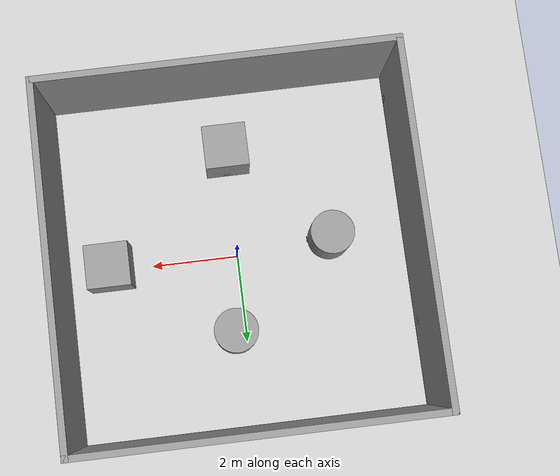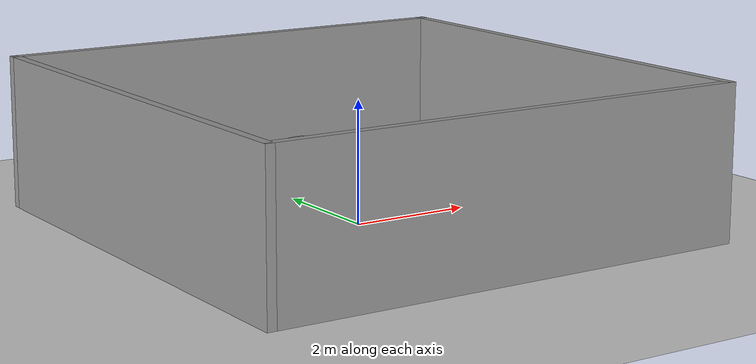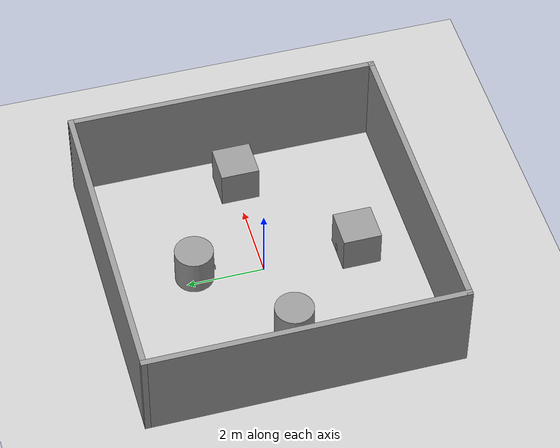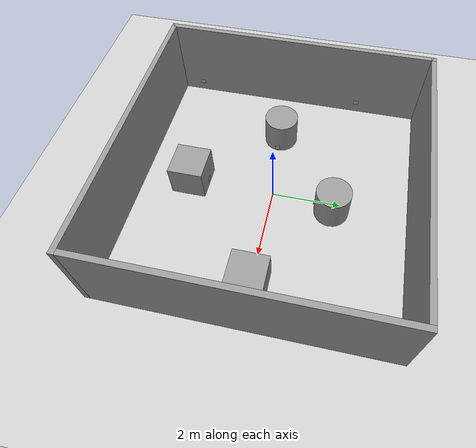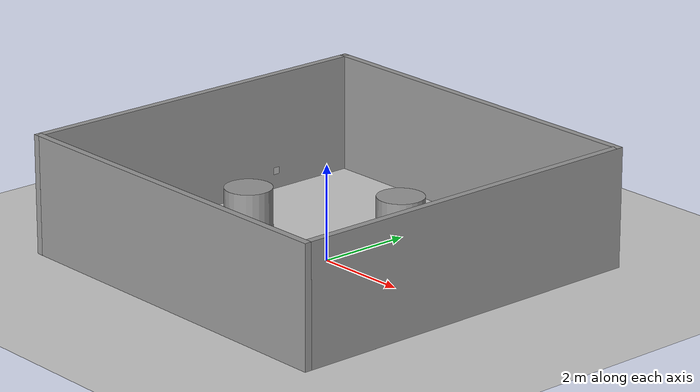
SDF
<sdf version="1.7">
 <world name="default">
  <light name="sun" type="directional">
   <pose>0 0 10 0 -0 0</pose>
   <diffuse>0.8 0.8 0.8 1</diffuse>
   <specular>0.2 0.2 0.2 1</specular>
   <attenuation>
    <range>1000</range>
    <constant>0.9</constant>
    <linear>0.01</linear>
    <quadratic>0.001</quadratic>
   </attenuation>
   <direction>-0.5 0.1 -0.9</direction>
   <spot><inner_angle>0</inner_angle><outer_angle>0</outer_angle><falloff>0</falloff></spot>
  </light>
  <model name="ground_plane">
   <static>1</static>
   <link name="link">
    <collision name="collision">
     <geometry><plane><normal>0 0 1</normal><size>100 100</size></plane></geometry>
     <surface><friction><ode><mu>100</mu><mu2>50</mu2></ode></friction></surface>
    </collision>
    <visual name="visual">
     <cast_shadows>0</cast_shadows>
     <geometry><plane><normal>0 0 1</normal><size>100 100</size></plane></geometry>
     <material>
      <script><uri>file://media/materials/scripts/gazebo.material</uri><name>Gazebo/Grey</name></script>
     </material>
    </visual>
   </link>
  </model>
  <gravity>0 0 -9.8</gravity>
  <magnetic_field>6e-06 2.3e-05 -4.2e-05</magnetic_field>
  <atmosphere type="adiabatic"/>
  <physics type="ode">
   <max_step_size>0.001</max_step_size>
   <real_time_factor>1</real_time_factor>
   <real_time_update_rate>1000</real_time_update_rate>
  </physics>
  <scene><ambient>0.4 0.4 0.4 1</ambient><background>0.7 0.7 0.7 1</background><shadows>1</shadows></scene>
  <audio><device>default</device></audio>
  <spherical_coordinates>
   <surface_model>EARTH_WGS84</surface_model>
   <latitude_deg>0</latitude_deg>
   <longitude_deg>0</longitude_deg>
   <elevation>0</elevation>
   <heading_deg>0</heading_deg>
  </spherical_coordinates>
  <model name="Koundinya_trial_1">
   <link name="Wall_3">
    <collision name="Wall_3_Collision">
     <geometry><box><size>8.15 0.15 2.5</size></box></geometry>
     <pose>0 0 1.25 0 -0 0</pose>
    </collision>
    <visual name="Wall_3_Visual">
     <pose>0 0 1.25 0 -0 0</pose>
     <geometry><box><size>8.15 0.15 2.5</size></box></geometry>
     <material>
      <script><uri>file://media/materials/scripts/gazebo.material</uri><name>Gazebo/Grey</name></script>
      <ambient>1 1 1 1</ambient>
     </material>
     <meta><layer>0</layer></meta>
    </visual>
    <pose>-4 0 0 0 -0 -1.5708</pose>
   </link>
   <link name="Wall_5">
    <collision name="Wall_5_Collision">
     <geometry><box><size>8.15 0.15 2.5</size></box></geometry>
     <pose>0 0 1.25 0 -0 0</pose>
    </collision>
    <visual name="Wall_5_Visual">
     <pose>0 0 1.25 0 -0 0</pose>
     <geometry><box><size>8.15 0.15 2.5</size></box></geometry>
     <material>
      <script><uri>file://media/materials/scripts/gazebo.material</uri><name>Gazebo/Grey</name></script>
      <ambient>1 1 1 1</ambient>
     </material>
     <meta><layer>0</layer></meta>
    </visual>
    <pose>0 4 0 0 -0 0</pose>
   </link>
   <link name="Wall_7">
    <collision name="Wall_7_Collision">
     <geometry><box><size>8.15 0.15 2.5</size></box></geometry>
     <pose>0 0 1.25 0 -0 0</pose>
    </collision>
    <visual name="Wall_7_Visual">
     <pose>0 0 1.25 0 -0 0</pose>
     <geometry><box><size>8.15 0.15 2.5</size></box></geometry>
     <material>
      <script><uri>file://media/materials/scripts/gazebo.material</uri><name>Gazebo/Grey</name></script>
      <ambient>1 1 1 1</ambient>
     </material>
     <meta><layer>0</layer></meta>
    </visual>
    <pose>4 0 0 0 -0 -1.5708</pose>
   </link>
   <link name="Wall_9">
    <collision name="Wall_9_Collision">
     <geometry><box><size>8.15 0.15 2.5</size></box></geometry>
     <pose>0 0 1.25 0 -0 0</pose>
    </collision>
    <visual name="Wall_9_Visual">
     <pose>0 0 1.25 0 -0 0</pose>
     <geometry><box><size>8.15 0.15 2.5</size></box></geometry>
     <material>
      <script><uri>file://media/materials/scripts/gazebo.material</uri><name>Gazebo/Grey</name></script>
      <ambient>1 1 1 1</ambient>
     </material>
     <meta><layer>0</layer></meta>
    </visual>
    <pose>0 -4 0 0 -0 3.14159</pose>
   </link>
   <static>1</static>
  </model>
  <model name="unit_cylinder">
   <pose>0.23048 1.75966 0.499992 -3e-06 -4e-06 -0</pose>
   <link name="link">
    <inertial>
     <mass>1</mass>
     <inertia><ixx>0.145833</ixx><ixy>0</ixy><ixz>0</ixz><iyy>0.145833</iyy><iyz>0</iyz><izz>0.125</izz></inertia>
    </inertial>
    <collision name="collision">
     <geometry><cylinder><radius>0.5</radius><length>1</length></cylinder></geometry>
    </collision>
    <visual name="visual">
     <geometry><cylinder><radius>0.5</radius><length>1</length></cylinder></geometry>
     <material>
      <script><name>Gazebo/Grey</name><uri>file://media/materials/scripts/gazebo.material</uri></script>
     </material>
    </visual>
   </link>
  </model>
  <model name="unit_box">
   <pose>-0.01691 -2.45145 0.499995 0 1e-05 0</pose>
   <link name="link">
    <inertial>
     <mass>1</mass>
     <inertia>
      <ixx>0.166667</ixx>
      <ixy>0</ixy>
      <ixz>0</ixz>
      <iyy>0.166667</iyy>
      <iyz>0</iyz>
      <izz>0.166667</izz>
     </inertia>
    </inertial>
    <collision name="collision"><geometry><box><size>1 1 1</size></box></geometry></collision>
    <visual name="visual">
     <geometry><box><size>1 1 1</size></box></geometry>
     <material>
      <script><name>Gazebo/Grey</name><uri>file://media/materials/scripts/gazebo.material</uri></script>
     </material>
    </visual>
   </link>
  </model>
  <model name="unit_box_0">
   <pose>2.94049 -0.038475 0.499995 1e-05 -0 0</pose>
   <link name="link">
    <inertial>
     <mass>1</mass>
     <inertia>
      <ixx>0.166667</ixx>
      <ixy>0</ixy>
      <ixz>0</ixz>
      <iyy>0.166667</iyy>
      <iyz>0</iyz>
      <izz>0.166667</izz>
     </inertia>
    </inertial>
    <collision name="collision"><geometry><box><size>1 1 1</size></box></geometry></collision>
    <visual name="visual">
     <geometry><box><size>1 1 1</size></box></geometry>
     <material>
      <script><name>Gazebo/Grey</name><uri>file://media/materials/scripts/gazebo.material</uri></script>
     </material>
    </visual>
   </link>
  </model>
  <model name="unit_cylinder_0">
   <pose>-2.18952 -0.182543 0.499994 -4e-06 -4e-06 -0</pose>
   <link name="link">
    <inertial>
     <mass>1</mass>
     <inertia><ixx>0.145833</ixx><ixy>0</ixy><ixz>0</ixz><iyy>0.145833</iyy><iyz>0</iyz><izz>0.125</izz></inertia>
    </inertial>
    <collision name="collision">
     <geometry><cylinder><radius>0.5</radius><length>1</length></cylinder></geometry>
    </collision>
    <visual name="visual">
     <geometry><cylinder><radius>0.5</radius><length>1</length></cylinder></geometry>
     <material>
      <script><name>Gazebo/Grey</name><uri>file://media/materials/scripts/gazebo.material</uri></script>
     </material>
    </visual>
   </link>
  </model>
  <model name="aruco_marker_0_0">
   <static>0</static>
   <link name="link">
    <gravity>0</gravity>
    <inertial>
     <mass>0.001</mass>
     <inertia>
      <ixx>3.75e-06</ixx>
      <ixy>0</ixy>
      <ixz>0</ixz>
      <iyy>1.875e-06</iyy>
      <iyz>0</iyz>
      <izz>1.875e-06</izz>
     </inertia>
    </inertial>
    <visual name="front_visual">
     <pose>5e-05 0 0 0 -0 0</pose>
     <geometry><box><size>0.0001 0.15 0.15</size></box></geometry>
     <material>
      <script>
       <uri>model://aruco_marker_0/materials/scripts</uri>
       <uri>model://aruco_marker_0/materials/textures</uri>
       <name>aruco_marker_0</name>
      </script>
     </material>
    </visual>
    <visual name="rear_visual">
     <pose>-5e-05 0 0 0 -0 0</pose>
     <geometry><box><size>0.0001 0.15 0.15</size></box></geometry>
    </visual>
    <collision name="collision"><geometry><box><size>0.0001 0.15 0.15</size></box></geometry></collision>
   </link>
   <pose>0.00711 -1.92724 0.278967 -0.019768 -0.000796 1.53057</pose>
  </model>
  <model name="aruco_marker_1">
   <static>0</static>
   <link name="link">
    <gravity>0</gravity>
    <inertial>
     <mass>0.001</mass>
     <inertia>
      <ixx>3.75e-06</ixx>
      <ixy>0</ixy>
      <ixz>0</ixz>
      <iyy>1.875e-06</iyy>
      <iyz>0</iyz>
      <izz>1.875e-06</izz>
     </inertia>
    </inertial>
    <visual name="front_visual">
     <pose>5e-05 0 0 0 -0 0</pose>
     <geometry><box><size>0.0001 0.15 0.15</size></box></geometry>
     <material>
      <script>
       <uri>model://aruco_marker_1/materials/scripts</uri>
       <uri>model://aruco_marker_1/materials/textures</uri>
       <name>aruco_marker_1</name>
      </script>
     </material>
    </visual>
    <visual name="rear_visual">
     <pose>-5e-05 0 0 0 -0 0</pose>
     <geometry><box><size>0.0001 0.15 0.15</size></box></geometry>
    </visual>
    <collision name="collision"><geometry><box><size>0.0001 0.15 0.15</size></box></geometry></collision>
   </link>
   <pose>-1.66635 -0.20058 0.147315 -6e-06 -0.011717 0</pose>
  </model>
  <model name="aruco_marker_2">
   <static>0</static>
   <link name="link">
    <gravity>0</gravity>
    <inertial>
     <mass>0.001</mass>
     <inertia>
      <ixx>3.75e-06</ixx>
      <ixy>0</ixy>
      <ixz>0</ixz>
      <iyy>1.875e-06</iyy>
      <iyz>0</iyz>
      <izz>1.875e-06</izz>
     </inertia>
    </inertial>
    <visual name="front_visual">
     <pose>5e-05 0 0 0 -0 0</pose>
     <geometry><box><size>0.0001 0.15 0.15</size></box></geometry>
     <material>
      <script>
       <uri>model://aruco_marker_2/materials/scripts</uri>
       <uri>model://aruco_marker_2/materials/textures</uri>
       <name>aruco_marker_2</name>
      </script>
     </material>
    </visual>
    <visual name="rear_visual">
     <pose>-5e-05 0 0 0 -0 0</pose>
     <geometry><box><size>0.0001 0.15 0.15</size></box></geometry>
    </visual>
    <collision name="collision"><geometry><box><size>0.0001 0.15 0.15</size></box></geometry></collision>
   </link>
   <pose>0.227066 1.23391 0.247501 0.011045 -0.001283 -1.45561</pose>
  </model>
  <model name="aruco_marker_3">
   <static>0</static>
   <link name="link">
    <gravity>0</gravity>
    <inertial>
     <mass>0.001</mass>
     <inertia>
      <ixx>3.75e-06</ixx>
      <ixy>0</ixy>
      <ixz>0</ixz>
      <iyy>1.875e-06</iyy>
      <iyz>0</iyz>
      <izz>1.875e-06</izz>
     </inertia>
    </inertial>
    <visual name="front_visual">
     <pose>5e-05 0 0 0 -0 0</pose>
     <geometry><box><size>0.0001 0.15 0.15</size></box></geometry>
     <material>
      <script>
       <uri>model://aruco_marker_3/materials/scripts</uri>
       <uri>model://aruco_marker_3/materials/textures</uri>
       <name>aruco_marker_3</name>
      </script>
     </material>
    </visual>
    <visual name="rear_visual">
     <pose>-5e-05 0 0 0 -0 0</pose>
     <geometry><box><size>0.0001 0.15 0.15</size></box></geometry>
    </visual>
    <collision name="collision"><geometry><box><size>0.0001 0.15 0.15</size></box></geometry></collision>
   </link>
   <pose>-3.91649 2.01299 0.390137 -6e-06 -0.011952 0</pose>
  </model>
  <model name="aruco_marker_0">
   <static>0</static>
   <link name="link">
    <gravity>0</gravity>
    <inertial>
     <mass>0.001</mass>
     <inertia>
      <ixx>3.75e-06</ixx>
      <ixy>0</ixy>
      <ixz>0</ixz>
      <iyy>1.875e-06</iyy>
      <iyz>0</iyz>
      <izz>1.875e-06</izz>
     </inertia>
    </inertial>
    <visual name="front_visual">
     <pose>5e-05 0 0 0 -0 0</pose>
     <geometry><box><size>0.0001 0.15 0.15</size></box></geometry>
     <material>
      <script>
       <uri>model://aruco_marker_0/materials/scripts</uri>
       <uri>model://aruco_marker_0/materials/textures</uri>
       <name>aruco_marker_0</name>
      </script>
     </material>
    </visual>
    <visual name="rear_visual">
     <pose>-5e-05 0 0 0 -0 0</pose>
     <geometry><box><size>0.0001 0.15 0.15</size></box></geometry>
    </visual>
    <collision name="collision"><geometry><box><size>0.0001 0.15 0.15</size></box></geometry></collision>
   </link>
   <pose>-3.88028 -3.28172 0.386727 -6e-06 -0.011825 0</pose>
  </model>
 </world>
</sdf>
